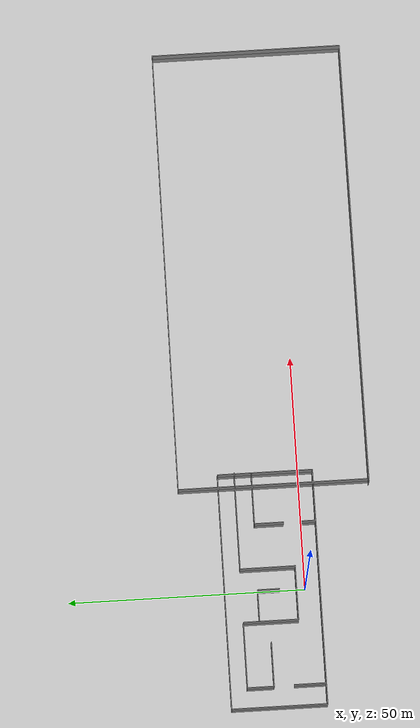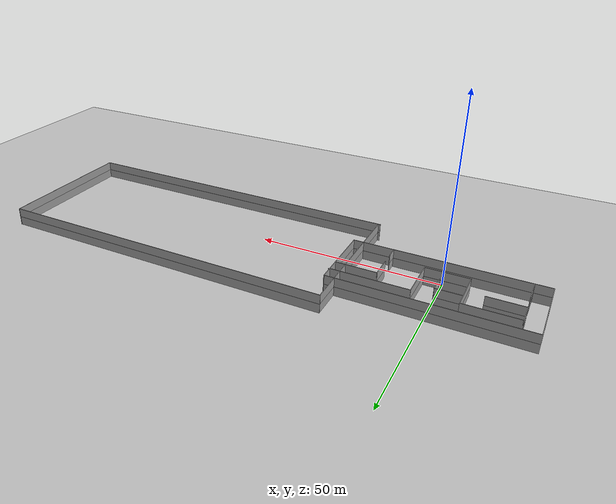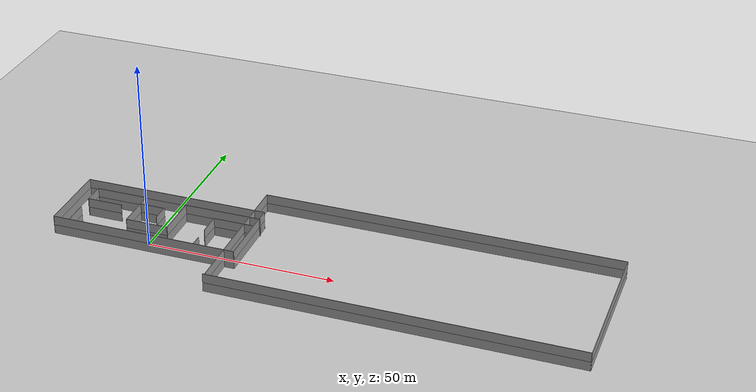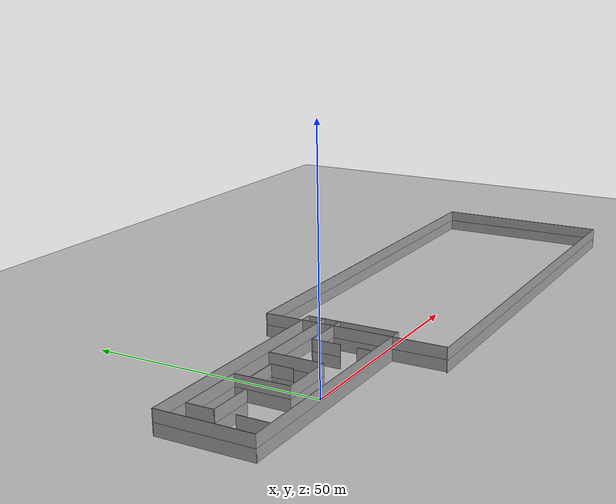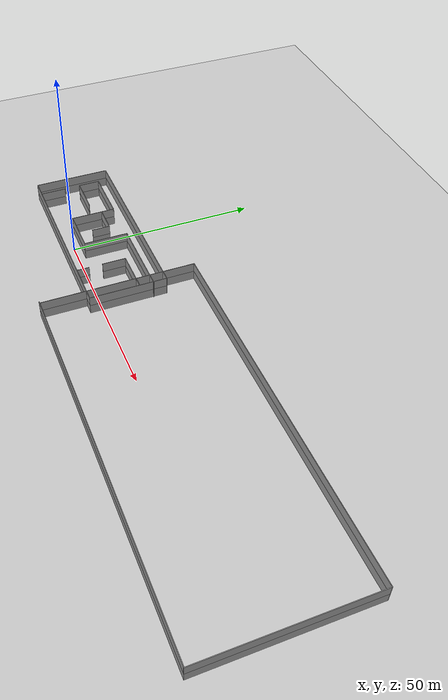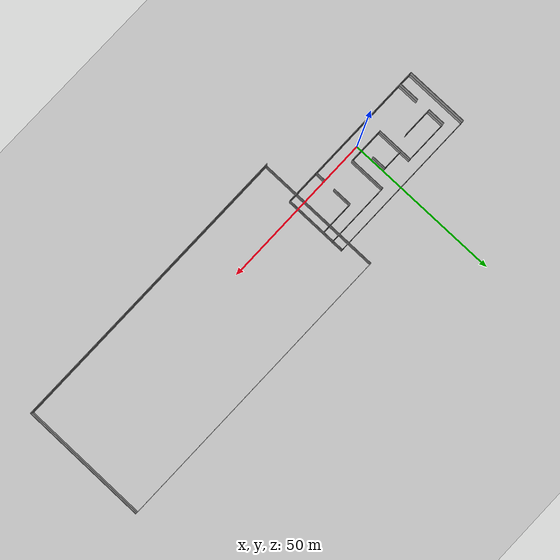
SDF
<sdf version="1.6">
 <world name="default">
  <model name="ground_plane">
   <static>1</static>
   <link name="link">
    <collision name="collision">
     <geometry><plane><normal>0 0 1</normal><size>100 100</size></plane></geometry>
     <surface><friction><ode><mu>100</mu><mu2>50</mu2></ode></friction></surface>
    </collision>
    <visual name="visual">
     <cast_shadows>0</cast_shadows>
     <geometry><plane><normal>0 0 1</normal><size>100 100</size></plane></geometry>
     <material>
      <script><uri>file://media/materials/scripts/gazebo.material</uri><name>Gazebo/Grey</name></script>
     </material>
    </visual>
   </link>
  </model>
  <model name="ExploringOffice5">
   <pose>0 7 0 0 -0 0</pose>
   <link name="Wall_0">
    <collision name="Wall_0_Collision">
     <geometry><box><size>50 0.15 2.5</size></box></geometry>
     <pose>0 0 1.25 0 -0 0</pose>
    </collision>
    <visual name="Wall_0_Visual">
     <pose>0 0 1.25 0 -0 0</pose>
     <geometry><box><size>50 0.15 2.5</size></box></geometry>
     <material>
      <script><uri>file://media/materials/scripts/gazebo.material</uri><name>Gazebo/Grey</name></script>
      <ambient>1 1 1 1</ambient>
     </material>
     <meta><layer>0</layer></meta>
    </visual>
    <pose>-0.122376 -10.05 0 0 -0 0</pose>
   </link>
   <link name="Wall_1">
    <collision name="Wall_1_Collision">
     <geometry><box><size>20.25 0.15 2.5</size></box></geometry>
     <pose>0 0 1.25 0 -0 0</pose>
    </collision>
    <visual name="Wall_1_Visual">
     <pose>0 0 1.25 0 -0 0</pose>
     <geometry><box><size>20.25 0.15 2.5</size></box></geometry>
     <material>
      <script><uri>file://media/materials/scripts/gazebo.material</uri><name>Gazebo/Grey</name></script>
      <ambient>1 1 1 1</ambient>
     </material>
     <meta><layer>0</layer></meta>
    </visual>
    <pose>24.8026 -0 0 0 -0 1.5708</pose>
   </link>
   <link name="Wall_10">
    <collision name="Wall_10_Collision">
     <geometry><box><size>5.75 0.15 2.5</size></box></geometry>
     <pose>0 0 1.25 0 -0 0</pose>
    </collision>
    <visual name="Wall_10_Visual">
     <pose>0 0 1.25 0 -0 0</pose>
     <geometry><box><size>5.75 0.15 2.5</size></box></geometry>
     <material>
      <script><uri>file://media/materials/scripts/gazebo.material</uri><name>Gazebo/Grey</name></script>
      <ambient>1 1 1 1</ambient>
     </material>
     <meta><layer>0</layer></meta>
    </visual>
    <pose>-20.7526 3.69277 0 0 -0 1.5708</pose>
   </link>
   <link name="Wall_11">
    <collision name="Wall_11_Collision">
     <geometry><box><size>14 0.15 2.5</size></box></geometry>
     <pose>0 0 1.25 0 -0 0</pose>
    </collision>
    <visual name="Wall_11_Visual">
     <pose>0 0 1.25 0 -0 0</pose>
     <geometry><box><size>14 0.15 2.5</size></box></geometry>
     <material>
      <script><uri>file://media/materials/scripts/gazebo.material</uri><name>Gazebo/Grey</name></script>
      <ambient>1 1 1 1</ambient>
     </material>
     <meta><layer>0</layer></meta>
    </visual>
    <pose>-13.8276 6.49277 0 0 -0 0</pose>
   </link>
   <link name="Wall_12">
    <collision name="Wall_12_Collision">
     <geometry><box><size>11.75 0.15 2.5</size></box></geometry>
     <pose>0 0 1.25 0 -0 0</pose>
    </collision>
    <visual name="Wall_12_Visual">
     <pose>0 0 1.25 0 -0 0</pose>
     <geometry><box><size>11.75 0.15 2.5</size></box></geometry>
     <material>
      <script><uri>file://media/materials/scripts/gazebo.material</uri><name>Gazebo/Grey</name></script>
      <ambient>1 1 1 1</ambient>
     </material>
     <meta><layer>0</layer></meta>
    </visual>
    <pose>-6.90262 0.692768 0 0 -0 -1.5708</pose>
   </link>
   <link name="Wall_13">
    <collision name="Wall_13_Collision">
     <geometry><box><size>11.5 0.15 2.5</size></box></geometry>
     <pose>0 0 1.25 0 -0 0</pose>
    </collision>
    <visual name="Wall_13_Visual">
     <pose>0 0 1.25 0 -0 0</pose>
     <geometry><box><size>11.5 0.15 2.5</size></box></geometry>
     <material>
      <script><uri>file://media/materials/scripts/gazebo.material</uri><name>Gazebo/Grey</name></script>
      <ambient>1 1 1 1</ambient>
     </material>
     <meta><layer>0</layer></meta>
    </visual>
    <pose>-1.22762 -5.10723 0 0 -0 0</pose>
   </link>
   <link name="Wall_14">
    <collision name="Wall_14_Collision">
     <geometry><box><size>11.75 0.15 2.5</size></box></geometry>
     <pose>0 0 1.25 0 -0 0</pose>
    </collision>
    <visual name="Wall_14_Visual">
     <pose>0 0 1.25 0 -0 0</pose>
     <geometry><box><size>11.75 0.15 2.5</size></box></geometry>
     <material>
      <script><uri>file://media/materials/scripts/gazebo.material</uri><name>Gazebo/Grey</name></script>
      <ambient>1 1 1 1</ambient>
     </material>
     <meta><layer>0</layer></meta>
    </visual>
    <pose>4.44738 0.692768 0 0 -0 1.5708</pose>
   </link>
   <link name="Wall_15">
    <collision name="Wall_15_Collision">
     <geometry><box><size>20.75 0.15 2.5</size></box></geometry>
     <pose>0 0 1.25 0 -0 0</pose>
    </collision>
    <visual name="Wall_15_Visual">
     <pose>0 0 1.25 0 -0 0</pose>
     <geometry><box><size>20.75 0.15 2.5</size></box></geometry>
     <material>
      <script><uri>file://media/materials/scripts/gazebo.material</uri><name>Gazebo/Grey</name></script>
      <ambient>1 1 1 1</ambient>
     </material>
     <meta><layer>0</layer></meta>
    </visual>
    <pose>14.7474 6.49277 0 0 -0 0</pose>
   </link>
   <link name="Wall_17">
    <collision name="Wall_17_Collision">
     <geometry><box><size>6.75 0.15 2.5</size></box></geometry>
     <pose>0 0 1.25 0 -0 0</pose>
    </collision>
    <visual name="Wall_17_Visual">
     <pose>0 0 1.25 0 -0 0</pose>
     <geometry><box><size>6.75 0.15 2.5</size></box></geometry>
     <material>
      <script><uri>file://media/materials/scripts/gazebo.material</uri><name>Gazebo/Grey</name></script>
      <ambient>1 1 1 1</ambient>
     </material>
     <meta><layer>0</layer></meta>
    </visual>
    <pose>-3.50141 3.08637 0 0 -0 0</pose>
   </link>
   <link name="Wall_18">
    <collision name="Wall_18_Collision">
     <geometry><box><size>4.75 0.15 2.5</size></box></geometry>
     <pose>0 0 1.25 0 -0 0</pose>
    </collision>
    <visual name="Wall_18_Visual">
     <pose>0 0 1.25 0 -0 0</pose>
     <geometry><box><size>4.75 0.15 2.5</size></box></geometry>
     <material>
      <script><uri>file://media/materials/scripts/gazebo.material</uri><name>Gazebo/Grey</name></script>
      <ambient>1 1 1 1</ambient>
     </material>
     <meta><layer>0</layer></meta>
    </visual>
    <pose>-0.20141 0.786371 0 0 -0 -1.5708</pose>
   </link>
   <link name="Wall_2">
    <collision name="Wall_2_Collision">
     <geometry><box><size>50 0.15 2.5</size></box></geometry>
     <pose>0 0 1.25 0 -0 0</pose>
    </collision>
    <visual name="Wall_2_Visual">
     <pose>0 0 1.25 0 -0 0</pose>
     <geometry><box><size>50 0.15 2.5</size></box></geometry>
     <material>
      <script><uri>file://media/materials/scripts/gazebo.material</uri><name>Gazebo/Grey</name></script>
      <ambient>1 1 1 1</ambient>
     </material>
     <meta><layer>0</layer></meta>
    </visual>
    <pose>-0.122376 10.05 0 0 -0 3.14159</pose>
   </link>
   <link name="Wall_20">
    <collision name="Wall_20_Collision">
     <geometry><box><size>11 0.15 2.5</size></box></geometry>
     <pose>0 0 1.25 0 -0 0</pose>
    </collision>
    <visual name="Wall_20_Visual">
     <pose>0 0 1.25 0 -0 0</pose>
     <geometry><box><size>11 0.15 2.5</size></box></geometry>
     <material>
      <script><uri>file://media/materials/scripts/gazebo.material</uri><name>Gazebo/Grey</name></script>
      <ambient>1 1 1 1</ambient>
     </material>
     <meta><layer>0</layer></meta>
    </visual>
    <pose>19.3291 2.87236 0 0 -0 0</pose>
   </link>
   <link name="Wall_22">
    <collision name="Wall_22_Collision">
     <geometry><box><size>6.25 0.15 2.5</size></box></geometry>
     <pose>0 0 1.25 0 -0 0</pose>
    </collision>
    <visual name="Wall_22_Visual">
     <pose>0 0 1.25 0 -0 0</pose>
     <geometry><box><size>6.25 0.15 2.5</size></box></geometry>
     <material>
      <script><uri>file://media/materials/scripts/gazebo.material</uri><name>Gazebo/Grey</name></script>
      <ambient>1 1 1 1</ambient>
     </material>
     <meta><layer>0</layer></meta>
    </visual>
    <pose>13.9041 -0.177639 0 0 -0 -1.5708</pose>
   </link>
   <link name="Wall_26">
    <collision name="Wall_26_Collision">
     <geometry><box><size>3.25 0.15 2.5</size></box></geometry>
     <pose>0 0 1.25 0 -0 0</pose>
    </collision>
    <visual name="Wall_26_Visual">
     <pose>0 0 1.25 0 -0 0</pose>
     <geometry><box><size>3.25 0.15 2.5</size></box></geometry>
     <material>
      <script><uri>file://media/materials/scripts/gazebo.material</uri><name>Gazebo/Grey</name></script>
      <ambient>1 1 1 1</ambient>
     </material>
     <meta><layer>0</layer></meta>
    </visual>
    <pose>13.898 -8.42714 0 0 -0 -1.5708</pose>
   </link>
   <link name="Wall_5">
    <collision name="Wall_5_Collision">
     <geometry><box><size>20.25 0.15 2.5</size></box></geometry>
     <pose>0 0 1.25 0 -0 0</pose>
    </collision>
    <visual name="Wall_5_Visual">
     <pose>0 0 1.25 0 -0 0</pose>
     <geometry><box><size>20.25 0.15 2.5</size></box></geometry>
     <material>
      <script><uri>file://media/materials/scripts/gazebo.material</uri><name>Gazebo/Grey</name></script>
      <ambient>1 1 1 1</ambient>
     </material>
     <meta><layer>0</layer></meta>
    </visual>
    <pose>-25.0474 -0 0 0 -0 -1.5708</pose>
   </link>
   <link name="Wall_7">
    <collision name="Wall_7_Collision">
     <geometry><box><size>6.75 0.15 2.5</size></box></geometry>
     <pose>0 0 1.25 0 -0 0</pose>
    </collision>
    <visual name="Wall_7_Visual">
     <pose>0 0 1.25 0 -0 0</pose>
     <geometry><box><size>6.75 0.15 2.5</size></box></geometry>
     <material>
      <script><uri>file://media/materials/scripts/gazebo.material</uri><name>Gazebo/Grey</name></script>
      <ambient>1 1 1 1</ambient>
     </material>
     <meta><layer>0</layer></meta>
    </visual>
    <pose>-20.6586 -6.72174 0 0 -0 1.5708</pose>
   </link>
   <link name="Wall_9">
    <collision name="Wall_9_Collision">
     <geometry><box><size>9.5 0.15 2.5</size></box></geometry>
     <pose>0 0 1.25 0 -0 0</pose>
    </collision>
    <visual name="Wall_9_Visual">
     <pose>0 0 1.25 0 -0 0</pose>
     <geometry><box><size>9.5 0.15 2.5</size></box></geometry>
     <material>
      <script><uri>file://media/materials/scripts/gazebo.material</uri><name>Gazebo/Grey</name></script>
      <ambient>1 1 1 1</ambient>
     </material>
     <meta><layer>0</layer></meta>
    </visual>
    <pose>-16.0776 0.892768 0 0 -0 3.14159</pose>
   </link>
   <static>1</static>
  </model>
  <model name="ExploringOffice5_0">
   <pose>0 7 2.5 0 -0 0</pose>
   <link name="Wall_0">
    <collision name="Wall_0_Collision">
     <geometry><box><size>50 0.15 2.5</size></box></geometry>
     <pose>0 0 1.25 0 -0 0</pose>
    </collision>
    <visual name="Wall_0_Visual">
     <pose>0 0 1.25 0 -0 0</pose>
     <geometry><box><size>50 0.15 2.5</size></box></geometry>
     <material>
      <script><uri>file://media/materials/scripts/gazebo.material</uri><name>Gazebo/Grey</name></script>
      <ambient>1 1 1 1</ambient>
     </material>
     <meta><layer>0</layer></meta>
    </visual>
    <pose>-0.122376 -10.05 0 0 -0 0</pose>
   </link>
   <link name="Wall_1">
    <collision name="Wall_1_Collision">
     <geometry><box><size>20.25 0.15 2.5</size></box></geometry>
     <pose>0 0 1.25 0 -0 0</pose>
    </collision>
    <visual name="Wall_1_Visual">
     <pose>0 0 1.25 0 -0 0</pose>
     <geometry><box><size>20.25 0.15 2.5</size></box></geometry>
     <material>
      <script><uri>file://media/materials/scripts/gazebo.material</uri><name>Gazebo/Grey</name></script>
      <ambient>1 1 1 1</ambient>
     </material>
     <meta><layer>0</layer></meta>
    </visual>
    <pose>24.8026 -0 0 0 -0 1.5708</pose>
   </link>
   <link name="Wall_10">
    <collision name="Wall_10_Collision">
     <geometry><box><size>5.75 0.15 2.5</size></box></geometry>
     <pose>0 0 1.25 0 -0 0</pose>
    </collision>
    <visual name="Wall_10_Visual">
     <pose>0 0 1.25 0 -0 0</pose>
     <geometry><box><size>5.75 0.15 2.5</size></box></geometry>
     <material>
      <script><uri>file://media/materials/scripts/gazebo.material</uri><name>Gazebo/Grey</name></script>
      <ambient>1 1 1 1</ambient>
     </material>
     <meta><layer>0</layer></meta>
    </visual>
    <pose>-20.7526 3.69277 0 0 -0 1.5708</pose>
   </link>
   <link name="Wall_11">
    <collision name="Wall_11_Collision">
     <geometry><box><size>14 0.15 2.5</size></box></geometry>
     <pose>0 0 1.25 0 -0 0</pose>
    </collision>
    <visual name="Wall_11_Visual">
     <pose>0 0 1.25 0 -0 0</pose>
     <geometry><box><size>14 0.15 2.5</size></box></geometry>
     <material>
      <script><uri>file://media/materials/scripts/gazebo.material</uri><name>Gazebo/Grey</name></script>
      <ambient>1 1 1 1</ambient>
     </material>
     <meta><layer>0</layer></meta>
    </visual>
    <pose>-13.8276 6.49277 0 0 -0 0</pose>
   </link>
   <link name="Wall_12">
    <collision name="Wall_12_Collision">
     <geometry><box><size>11.75 0.15 2.5</size></box></geometry>
     <pose>0 0 1.25 0 -0 0</pose>
    </collision>
    <visual name="Wall_12_Visual">
     <pose>0 0 1.25 0 -0 0</pose>
     <geometry><box><size>11.75 0.15 2.5</size></box></geometry>
     <material>
      <script><uri>file://media/materials/scripts/gazebo.material</uri><name>Gazebo/Grey</name></script>
      <ambient>1 1 1 1</ambient>
     </material>
     <meta><layer>0</layer></meta>
    </visual>
    <pose>-6.90262 0.692768 0 0 -0 -1.5708</pose>
   </link>
   <link name="Wall_13">
    <collision name="Wall_13_Collision">
     <geometry><box><size>11.5 0.15 2.5</size></box></geometry>
     <pose>0 0 1.25 0 -0 0</pose>
    </collision>
    <visual name="Wall_13_Visual">
     <pose>0 0 1.25 0 -0 0</pose>
     <geometry><box><size>11.5 0.15 2.5</size></box></geometry>
     <material>
      <script><uri>file://media/materials/scripts/gazebo.material</uri><name>Gazebo/Grey</name></script>
      <ambient>1 1 1 1</ambient>
     </material>
     <meta><layer>0</layer></meta>
    </visual>
    <pose>-1.22762 -5.10723 0 0 -0 0</pose>
   </link>
   <link name="Wall_14">
    <collision name="Wall_14_Collision">
     <geometry><box><size>11.75 0.15 2.5</size></box></geometry>
     <pose>0 0 1.25 0 -0 0</pose>
    </collision>
    <visual name="Wall_14_Visual">
     <pose>0 0 1.25 0 -0 0</pose>
     <geometry><box><size>11.75 0.15 2.5</size></box></geometry>
     <material>
      <script><uri>file://media/materials/scripts/gazebo.material</uri><name>Gazebo/Grey</name></script>
      <ambient>1 1 1 1</ambient>
     </material>
     <meta><layer>0</layer></meta>
    </visual>
    <pose>4.44738 0.692768 0 0 -0 1.5708</pose>
   </link>
   <link name="Wall_15">
    <collision name="Wall_15_Collision">
     <geometry><box><size>20.75 0.15 2.5</size></box></geometry>
     <pose>0 0 1.25 0 -0 0</pose>
    </collision>
    <visual name="Wall_15_Visual">
     <pose>0 0 1.25 0 -0 0</pose>
     <geometry><box><size>20.75 0.15 2.5</size></box></geometry>
     <material>
      <script><uri>file://media/materials/scripts/gazebo.material</uri><name>Gazebo/Grey</name></script>
      <ambient>1 1 1 1</ambient>
     </material>
     <meta><layer>0</layer></meta>
    </visual>
    <pose>14.7474 6.49277 0 0 -0 0</pose>
   </link>
   <link name="Wall_17">
    <collision name="Wall_17_Collision">
     <geometry><box><size>6.75 0.15 2.5</size></box></geometry>
     <pose>0 0 1.25 0 -0 0</pose>
    </collision>
    <visual name="Wall_17_Visual">
     <pose>0 0 1.25 0 -0 0</pose>
     <geometry><box><size>6.75 0.15 2.5</size></box></geometry>
     <material>
      <script><uri>file://media/materials/scripts/gazebo.material</uri><name>Gazebo/Grey</name></script>
      <ambient>1 1 1 1</ambient>
     </material>
     <meta><layer>0</layer></meta>
    </visual>
    <pose>-3.50141 3.08637 0 0 -0 0</pose>
   </link>
   <link name="Wall_18">
    <collision name="Wall_18_Collision">
     <geometry><box><size>4.75 0.15 2.5</size></box></geometry>
     <pose>0 0 1.25 0 -0 0</pose>
    </collision>
    <visual name="Wall_18_Visual">
     <pose>0 0 1.25 0 -0 0</pose>
     <geometry><box><size>4.75 0.15 2.5</size></box></geometry>
     <material>
      <script><uri>file://media/materials/scripts/gazebo.material</uri><name>Gazebo/Grey</name></script>
      <ambient>1 1 1 1</ambient>
     </material>
     <meta><layer>0</layer></meta>
    </visual>
    <pose>-0.20141 0.786371 0 0 -0 -1.5708</pose>
   </link>
   <link name="Wall_2">
    <collision name="Wall_2_Collision">
     <geometry><box><size>50 0.15 2.5</size></box></geometry>
     <pose>0 0 1.25 0 -0 0</pose>
    </collision>
    <visual name="Wall_2_Visual">
     <pose>0 0 1.25 0 -0 0</pose>
     <geometry><box><size>50 0.15 2.5</size></box></geometry>
     <material>
      <script><uri>file://media/materials/scripts/gazebo.material</uri><name>Gazebo/Grey</name></script>
      <ambient>1 1 1 1</ambient>
     </material>
     <meta><layer>0</layer></meta>
    </visual>
    <pose>-0.122376 10.05 0 0 -0 3.14159</pose>
   </link>
   <link name="Wall_20">
    <collision name="Wall_20_Collision">
     <geometry><box><size>11 0.15 2.5</size></box></geometry>
     <pose>0 0 1.25 0 -0 0</pose>
    </collision>
    <visual name="Wall_20_Visual">
     <pose>0 0 1.25 0 -0 0</pose>
     <geometry><box><size>11 0.15 2.5</size></box></geometry>
     <material>
      <script><uri>file://media/materials/scripts/gazebo.material</uri><name>Gazebo/Grey</name></script>
      <ambient>1 1 1 1</ambient>
     </material>
     <meta><layer>0</layer></meta>
    </visual>
    <pose>19.3291 2.87236 0 0 -0 0</pose>
   </link>
   <link name="Wall_22">
    <collision name="Wall_22_Collision">
     <geometry><box><size>6.25 0.15 2.5</size></box></geometry>
     <pose>0 0 1.25 0 -0 0</pose>
    </collision>
    <visual name="Wall_22_Visual">
     <pose>0 0 1.25 0 -0 0</pose>
     <geometry><box><size>6.25 0.15 2.5</size></box></geometry>
     <material>
      <script><uri>file://media/materials/scripts/gazebo.material</uri><name>Gazebo/Grey</name></script>
      <ambient>1 1 1 1</ambient>
     </material>
     <meta><layer>0</layer></meta>
    </visual>
    <pose>13.9041 -0.177639 0 0 -0 -1.5708</pose>
   </link>
   <link name="Wall_26">
    <collision name="Wall_26_Collision">
     <geometry><box><size>3.25 0.15 2.5</size></box></geometry>
     <pose>0 0 1.25 0 -0 0</pose>
    </collision>
    <visual name="Wall_26_Visual">
     <pose>0 0 1.25 0 -0 0</pose>
     <geometry><box><size>3.25 0.15 2.5</size></box></geometry>
     <material>
      <script><uri>file://media/materials/scripts/gazebo.material</uri><name>Gazebo/Grey</name></script>
      <ambient>1 1 1 1</ambient>
     </material>
     <meta><layer>0</layer></meta>
    </visual>
    <pose>13.898 -8.42714 0 0 -0 -1.5708</pose>
   </link>
   <link name="Wall_5">
    <collision name="Wall_5_Collision">
     <geometry><box><size>20.25 0.15 2.5</size></box></geometry>
     <pose>0 0 1.25 0 -0 0</pose>
    </collision>
    <visual name="Wall_5_Visual">
     <pose>0 0 1.25 0 -0 0</pose>
     <geometry><box><size>20.25 0.15 2.5</size></box></geometry>
     <material>
      <script><uri>file://media/materials/scripts/gazebo.material</uri><name>Gazebo/Grey</name></script>
      <ambient>1 1 1 1</ambient>
     </material>
     <meta><layer>0</layer></meta>
    </visual>
    <pose>-25.0474 -0 0 0 -0 -1.5708</pose>
   </link>
   <link name="Wall_7">
    <collision name="Wall_7_Collision">
     <geometry><box><size>6.75 0.15 2.5</size></box></geometry>
     <pose>0 0 1.25 0 -0 0</pose>
    </collision>
    <visual name="Wall_7_Visual">
     <pose>0 0 1.25 0 -0 0</pose>
     <geometry><box><size>6.75 0.15 2.5</size></box></geometry>
     <material>
      <script><uri>file://media/materials/scripts/gazebo.material</uri><name>Gazebo/Grey</name></script>
      <ambient>1 1 1 1</ambient>
     </material>
     <meta><layer>0</layer></meta>
    </visual>
    <pose>-20.6586 -6.72174 0 0 -0 1.5708</pose>
   </link>
   <link name="Wall_9">
    <collision name="Wall_9_Collision">
     <geometry><box><size>9.5 0.15 2.5</size></box></geometry>
     <pose>0 0 1.25 0 -0 0</pose>
    </collision>
    <visual name="Wall_9_Visual">
     <pose>0 0 1.25 0 -0 0</pose>
     <geometry><box><size>9.5 0.15 2.5</size></box></geometry>
     <material>
      <script><uri>file://media/materials/scripts/gazebo.material</uri><name>Gazebo/Grey</name></script>
      <ambient>1 1 1 1</ambient>
     </material>
     <meta><layer>0</layer></meta>
    </visual>
    <pose>-16.0776 0.892768 0 0 -0 3.14159</pose>
   </link>
   <static>1</static>
  </model>
  <model name="100mWall2">
   <pose>69.4382 5.33868 0 0 -0 0</pose>
   <link name="Wall_11">
    <collision name="Wall_11_Collision">
     <geometry><box><size>95.75 0.15 2.5</size></box></geometry>
     <pose>0 0 1.25 0 -0 0</pose>
    </collision>
    <visual name="Wall_11_Visual">
     <pose>0 0 1.25 0 -0 0</pose>
     <geometry><box><size>95.75 0.15 2.5</size></box></geometry>
     <material>
      <script><uri>file://media/materials/scripts/gazebo.material</uri><name>Gazebo/Grey</name></script>
      <ambient>1 1 1 1</ambient>
     </material>
     <meta><layer>0</layer></meta>
    </visual>
    <pose>0 -20.175 0 0 -0 0</pose>
   </link>
   <link name="Wall_12">
    <collision name="Wall_12_Collision">
     <geometry><box><size>40.5 0.15 2.5</size></box></geometry>
     <pose>0 0 1.25 0 -0 0</pose>
    </collision>
    <visual name="Wall_12_Visual">
     <pose>0 0 1.25 0 -0 0</pose>
     <geometry><box><size>40.5 0.15 2.5</size></box></geometry>
     <material>
      <script><uri>file://media/materials/scripts/gazebo.material</uri><name>Gazebo/Grey</name></script>
      <ambient>1 1 1 1</ambient>
     </material>
     <meta><layer>0</layer></meta>
    </visual>
    <pose>47.8 0 0 0 -0 1.5708</pose>
   </link>
   <link name="Wall_13">
    <collision name="Wall_13_Collision">
     <geometry><box><size>95.25 0.15 2.5</size></box></geometry>
     <pose>0 0 1.25 0 -0 0</pose>
    </collision>
    <visual name="Wall_13_Visual">
     <pose>0 0 1.25 0 -0 0</pose>
     <geometry><box><size>95.25 0.15 2.5</size></box></geometry>
     <material>
      <script><uri>file://media/materials/scripts/gazebo.material</uri><name>Gazebo/Grey</name></script>
      <ambient>1 1 1 1</ambient>
     </material>
     <meta><layer>0</layer></meta>
    </visual>
    <pose>0.25 20.175 0 0 -0 3.14159</pose>
   </link>
   <link name="Wall_14">
    <collision name="Wall_14_Collision">
     <geometry><box><size>40.25 0.15 2.5</size></box></geometry>
     <pose>0 0 1.25 0 -0 0</pose>
    </collision>
    <visual name="Wall_14_Visual">
     <pose>0 0 1.25 0 -0 0</pose>
     <geometry><box><size>40.25 0.15 2.5</size></box></geometry>
     <material>
      <script><uri>file://media/materials/scripts/gazebo.material</uri><name>Gazebo/Grey</name></script>
      <ambient>1 1 1 1</ambient>
     </material>
     <meta><layer>0</layer></meta>
    </visual>
    <pose>-47.3 0.125 0 0 -0 -1.5708</pose>
   </link>
   <static>1</static>
  </model>
  <model name="100mWall2_0">
   <pose>69.4382 5.33 2.5 0 -0 0</pose>
   <link name="Wall_11">
    <collision name="Wall_11_Collision">
     <geometry><box><size>95.75 0.15 2.5</size></box></geometry>
     <pose>0 0 1.25 0 -0 0</pose>
    </collision>
    <visual name="Wall_11_Visual">
     <pose>0 0 1.25 0 -0 0</pose>
     <geometry><box><size>95.75 0.15 2.5</size></box></geometry>
     <material>
      <script><uri>file://media/materials/scripts/gazebo.material</uri><name>Gazebo/Grey</name></script>
      <ambient>1 1 1 1</ambient>
     </material>
     <meta><layer>0</layer></meta>
    </visual>
    <pose>0 -20.175 0 0 -0 0</pose>
   </link>
   <link name="Wall_12">
    <collision name="Wall_12_Collision">
     <geometry><box><size>40.5 0.15 2.5</size></box></geometry>
     <pose>0 0 1.25 0 -0 0</pose>
    </collision>
    <visual name="Wall_12_Visual">
     <pose>0 0 1.25 0 -0 0</pose>
     <geometry><box><size>40.5 0.15 2.5</size></box></geometry>
     <material>
      <script><uri>file://media/materials/scripts/gazebo.material</uri><name>Gazebo/Grey</name></script>
      <ambient>1 1 1 1</ambient>
     </material>
     <meta><layer>0</layer></meta>
    </visual>
    <pose>47.8 0 0 0 -0 1.5708</pose>
   </link>
   <link name="Wall_13">
    <collision name="Wall_13_Collision">
     <geometry><box><size>95.25 0.15 2.5</size></box></geometry>
     <pose>0 0 1.25 0 -0 0</pose>
    </collision>
    <visual name="Wall_13_Visual">
     <pose>0 0 1.25 0 -0 0</pose>
     <geometry><box><size>95.25 0.15 2.5</size></box></geometry>
     <material>
      <script><uri>file://media/materials/scripts/gazebo.material</uri><name>Gazebo/Grey</name></script>
      <ambient>1 1 1 1</ambient>
     </material>
     <meta><layer>0</layer></meta>
    </visual>
    <pose>0.25 20.175 0 0 -0 3.14159</pose>
   </link>
   <link name="Wall_14">
    <collision name="Wall_14_Collision">
     <geometry><box><size>40.25 0.15 2.5</size></box></geometry>
     <pose>0 0 1.25 0 -0 0</pose>
    </collision>
    <visual name="Wall_14_Visual">
     <pose>0 0 1.25 0 -0 0</pose>
     <geometry><box><size>40.25 0.15 2.5</size></box></geometry>
     <material>
      <script><uri>file://media/materials/scripts/gazebo.material</uri><name>Gazebo/Grey</name></script>
      <ambient>1 1 1 1</ambient>
     </material>
     <meta><layer>0</layer></meta>
    </visual>
    <pose>-47.3 0.125 0 0 -0 -1.5708</pose>
   </link>
   <static>1</static>
  </model>
 </world>
</sdf>
